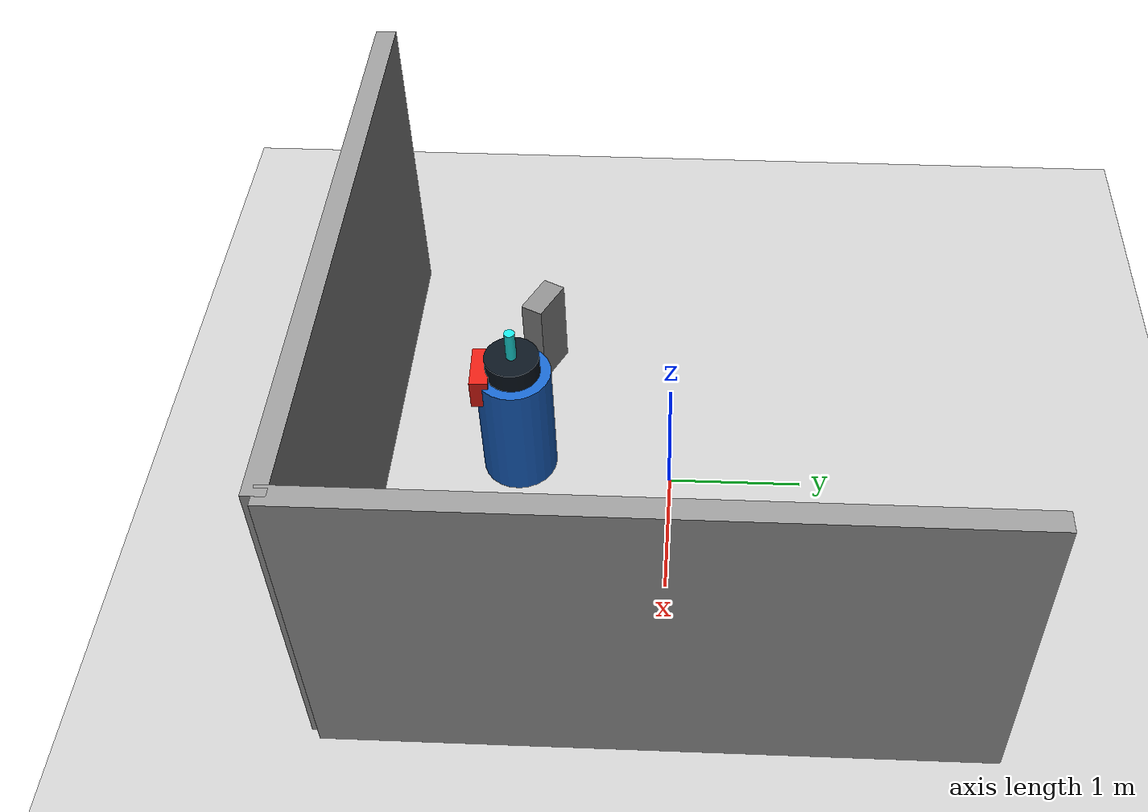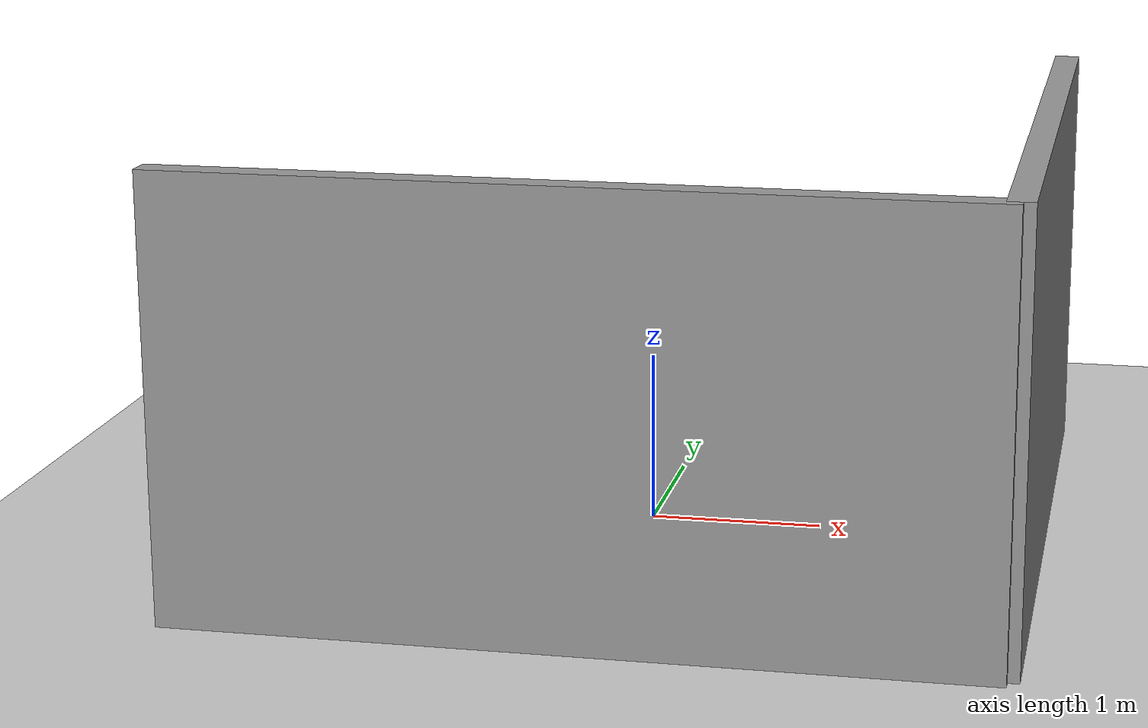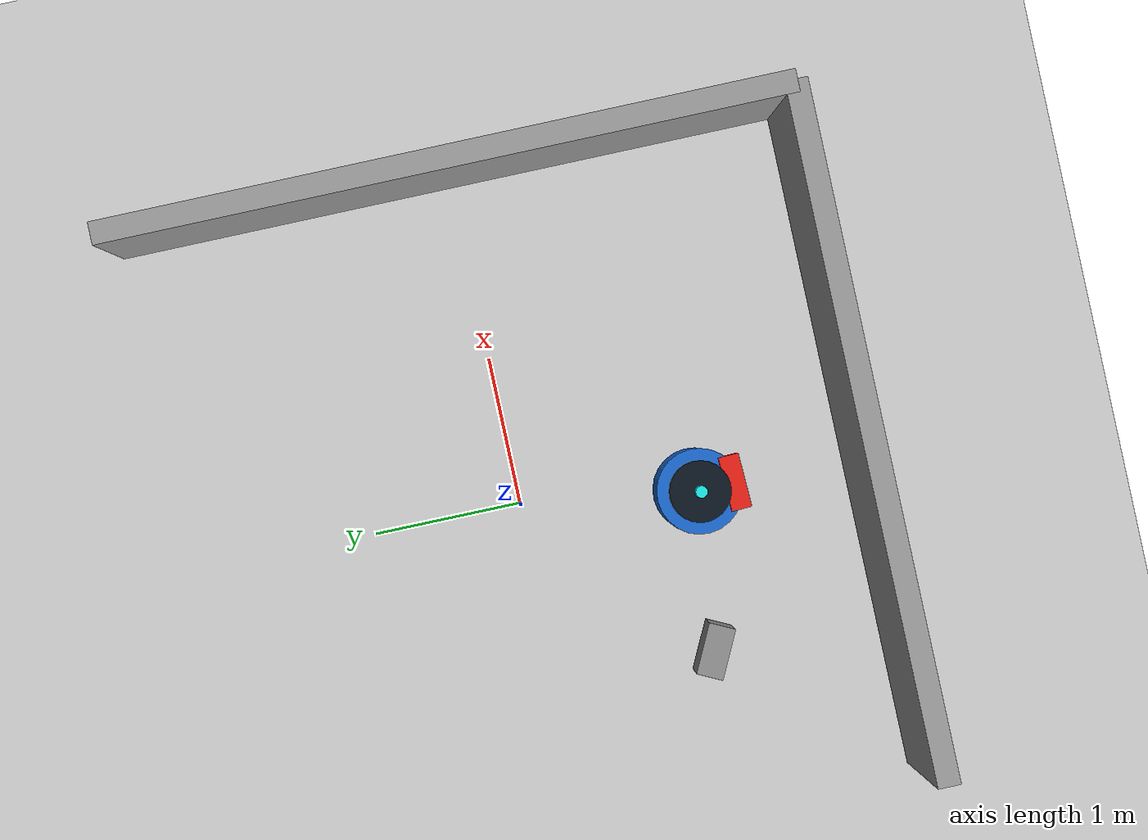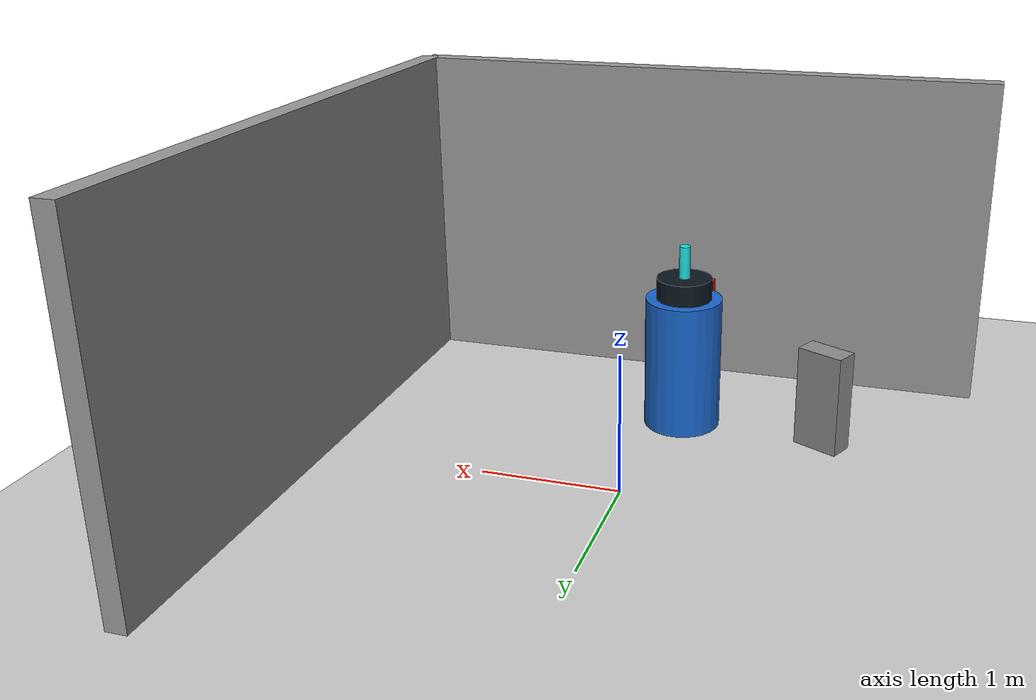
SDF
<sdf version="1.7">
 <world name="default">
  <plugin name="socnav_plugin" filename="libSocNavPlugin.so">
   <robot_name>robot</robot_name>
   <trajectory_file>/home/hunav_gz_classic_ws/SocNav3_trajectories/src6/000003844.json</trajectory_file>
   <human_slots>1</human_slots>
   <goal_angle_mesh>
    <angle_threshold>0.296574740079</angle_threshold>
    <uri>/home/hunav_gz_classic_ws/src/socnav_gazebo_reproducer/meshes/000003844_goal_angle_00.stl</uri>
   </goal_angle_mesh>
  </plugin>
  <light name="sun" type="directional">
   <pose>0 0 10 0 -0 0</pose>
   <diffuse>0.8 0.8 0.8 1</diffuse>
   <specular>0.2 0.2 0.2 1</specular>
   <attenuation>
    <range>1000</range>
    <constant>0.9</constant>
    <linear>0.01</linear>
    <quadratic>0.001</quadratic>
   </attenuation>
   <direction>-0.5 0.1 -0.9</direction>
   <spot><inner_angle>0</inner_angle><outer_angle>0</outer_angle><falloff>0</falloff></spot>
  </light>
  <model name="ground_plane">
   <static>1</static>
   <link name="link">
    <collision name="collision">
     <geometry><plane><normal>0 0 1</normal><size>100 100</size></plane></geometry>
     <surface><friction><ode><mu>100</mu><mu2>50</mu2></ode></friction></surface>
    </collision>
    <visual name="visual">
     <cast_shadows>0</cast_shadows>
     <geometry><plane><normal>0 0 1</normal><size>100 100</size></plane></geometry>
     <material>
      <script><uri>file://media/materials/scripts/kitchen.material</uri><name>Kitchen/CounterTop_H</name></script>
     </material>
    </visual>
   </link>
  </model>
  <gravity>0 0 -9.8</gravity>
  <magnetic_field>6e-06 2.3e-05 -4.2e-05</magnetic_field>
  <atmosphere type="adiabatic"/>
  <physics type="ode">
   <max_step_size>0.001</max_step_size>
   <real_time_factor>1</real_time_factor>
   <real_time_update_rate>1000</real_time_update_rate>
  </physics>
  <scene><ambient>0.4 0.4 0.4 1</ambient><background>0.7 0.7 0.7 1</background><shadows>1</shadows></scene>
  <audio><device>default</device></audio>
  <spherical_coordinates>
   <surface_model>EARTH_WGS84</surface_model>
   <latitude_deg>0</latitude_deg>
   <longitude_deg>0</longitude_deg>
   <elevation>0</elevation>
   <heading_deg>0</heading_deg>
  </spherical_coordinates>
  <model name="robot">
   <pose>-0.1584334452560783 -1.1709432935254869 0.5 0 0 -1.5302068705093532</pose>
   <link name="link">
    <collision name="collision">
     <geometry><cylinder><radius>0.2834459965740643</radius><length>1.0</length></cylinder></geometry>
    </collision>
    <visual name="visual">
     <geometry><cylinder><radius>0.2834459965740643</radius><length>1.0</length></cylinder></geometry>
     <material><ambient>0.1 0.4 0.8 1</ambient><diffuse>0.1 0.4 0.8 1</diffuse></material>
    </visual>
    <visual name="robot_top">
     <pose>0 0 0.58 0 0 0</pose>
     <geometry><cylinder><radius>0.20408111753332628</radius><length>0.16</length></cylinder></geometry>
     <material><ambient>0.04 0.08 0.12 1</ambient><diffuse>0.04 0.08 0.12 1</diffuse></material>
    </visual>
    <visual name="robot_front">
     <pose>0.238094637122214 0 0.44 0 0 0</pose>
     <geometry><box><size>0.13605407835555083 0.3628108756148023 0.24</size></box></geometry>
     <material><ambient>0.9 0.12 0.08 1</ambient><diffuse>0.9 0.12 0.08 1</diffuse></material>
    </visual>
    <visual name="robot_sensor">
     <pose>0 0 0.78 0 0 0</pose>
     <geometry><cylinder><radius>0.039682439520369005</radius><length>0.24</length></cylinder></geometry>
     <material><ambient>0.1 0.9 0.9 1</ambient><diffuse>0.1 0.9 0.9 1</diffuse></material>
    </visual>
   </link>
  </model>
  <model name="static_object_0">
   <static>true</static>
   <pose>-1.2256383532713424 -1.0612203721554372 0.375 0 0 2.6810977575093435</pose>
   <link name="link">
    <collision name="collision"><geometry><box><size>0.35 0.18 0.75</size></box></geometry></collision>
    <visual name="visual">
     <geometry><box><size>0.35 0.18 0.75</size></box></geometry>
     <material><ambient>0.55 0.55 0.55 1</ambient><diffuse>0.55 0.55 0.55 1</diffuse></material>
    </visual>
   </link>
  </model>
  <model name="simple_world_test">
   <link name="Wall_0">
    <collision name="Wall_0_Collision">
     <geometry><box><size>4.544763519399863 0.15 2.5</size></box></geometry>
     <pose>0 0 1.25 0 -0 0</pose>
    </collision>
    <visual name="Wall_0_Visual">
     <pose>0 0 1.25 0 -0 0</pose>
     <geometry><box><size>4.544763519399863 0.15 2.5</size></box></geometry>
     <material>
      <script><uri>file://media/materials/scripts/gazebo.material</uri><name>Gazebo/Grey</name></script>
      <ambient>1 1 1 1</ambient>
     </material>
     <meta><layer>0</layer></meta>
    </visual>
    <pose>2.262381759699932 0.0 0 0 -0 -1.5707963267948966</pose>
   </link>
   <link name="Wall_1">
    <collision name="Wall_1_Collision">
     <geometry><box><size>4.544763519399863 0.15 2.5</size></box></geometry>
     <pose>0 0 1.25 0 -0 0</pose>
    </collision>
    <visual name="Wall_1_Visual">
     <pose>0 0 1.25 0 -0 0</pose>
     <geometry><box><size>4.544763519399863 0.15 2.5</size></box></geometry>
     <material>
      <script><uri>file://media/materials/scripts/gazebo.material</uri><name>Gazebo/Grey</name></script>
      <ambient>1 1 1 1</ambient>
     </material>
     <meta><layer>0</layer></meta>
    </visual>
    <pose>0.0 -2.262381759699932 0 0 -0 -3.141592653589793</pose>
   </link>
   <static>1</static>
  </model>
 </world>
</sdf>
